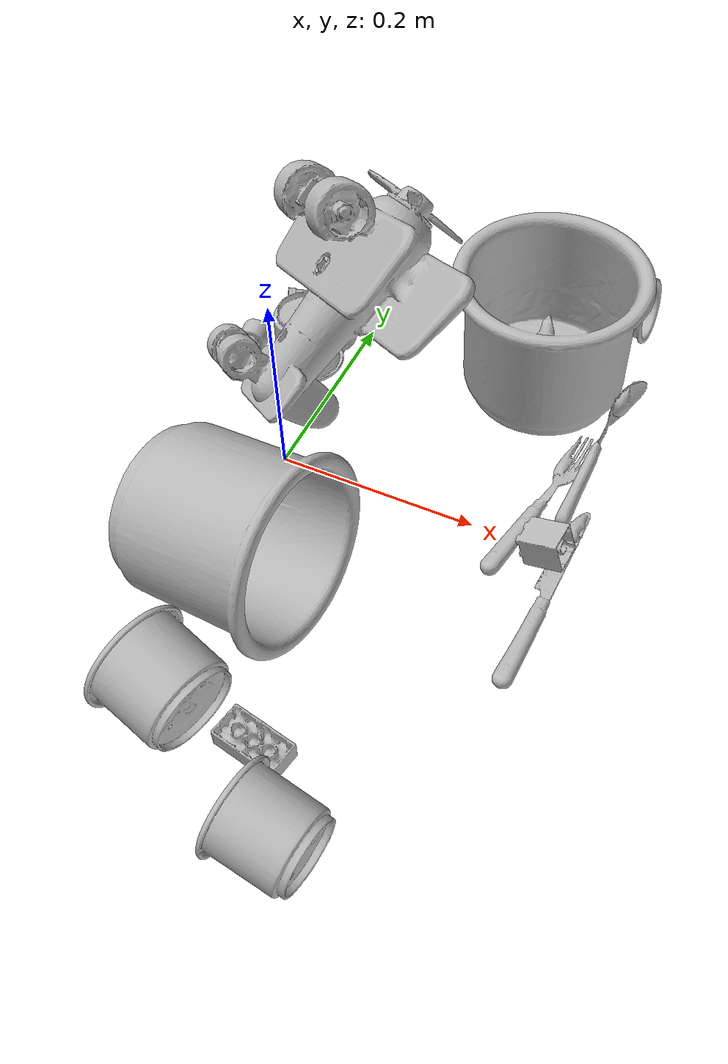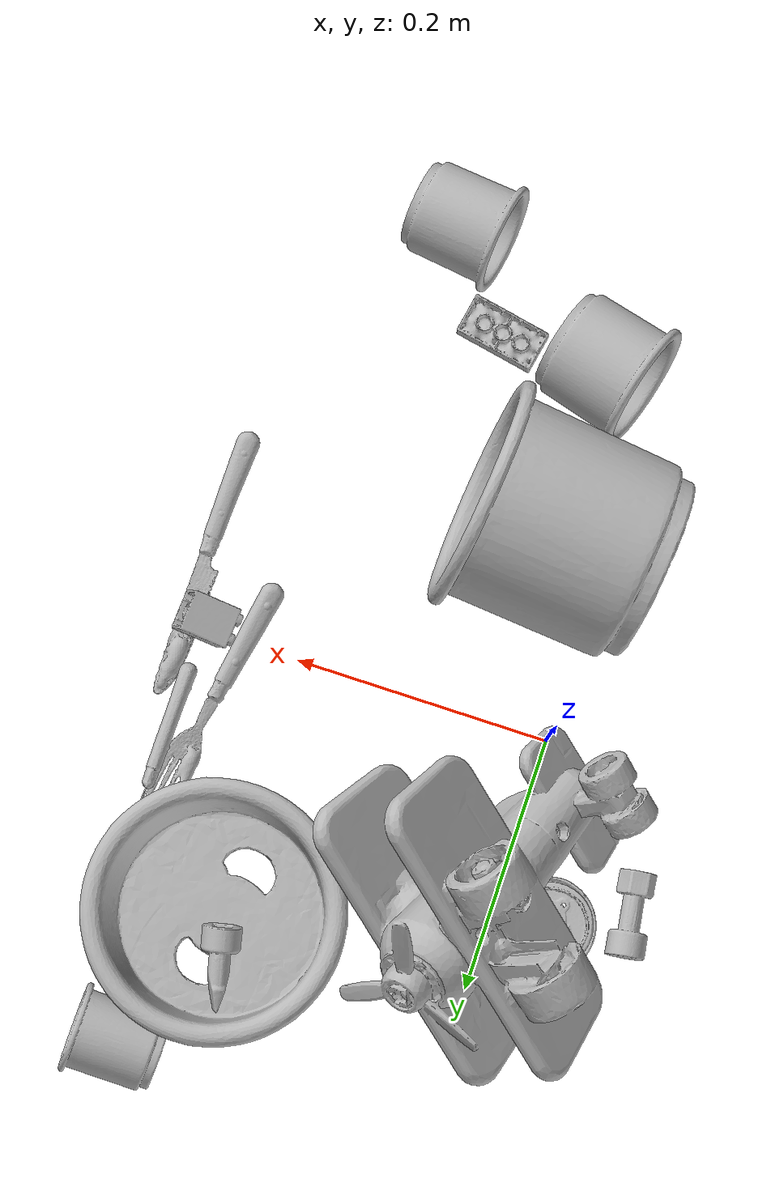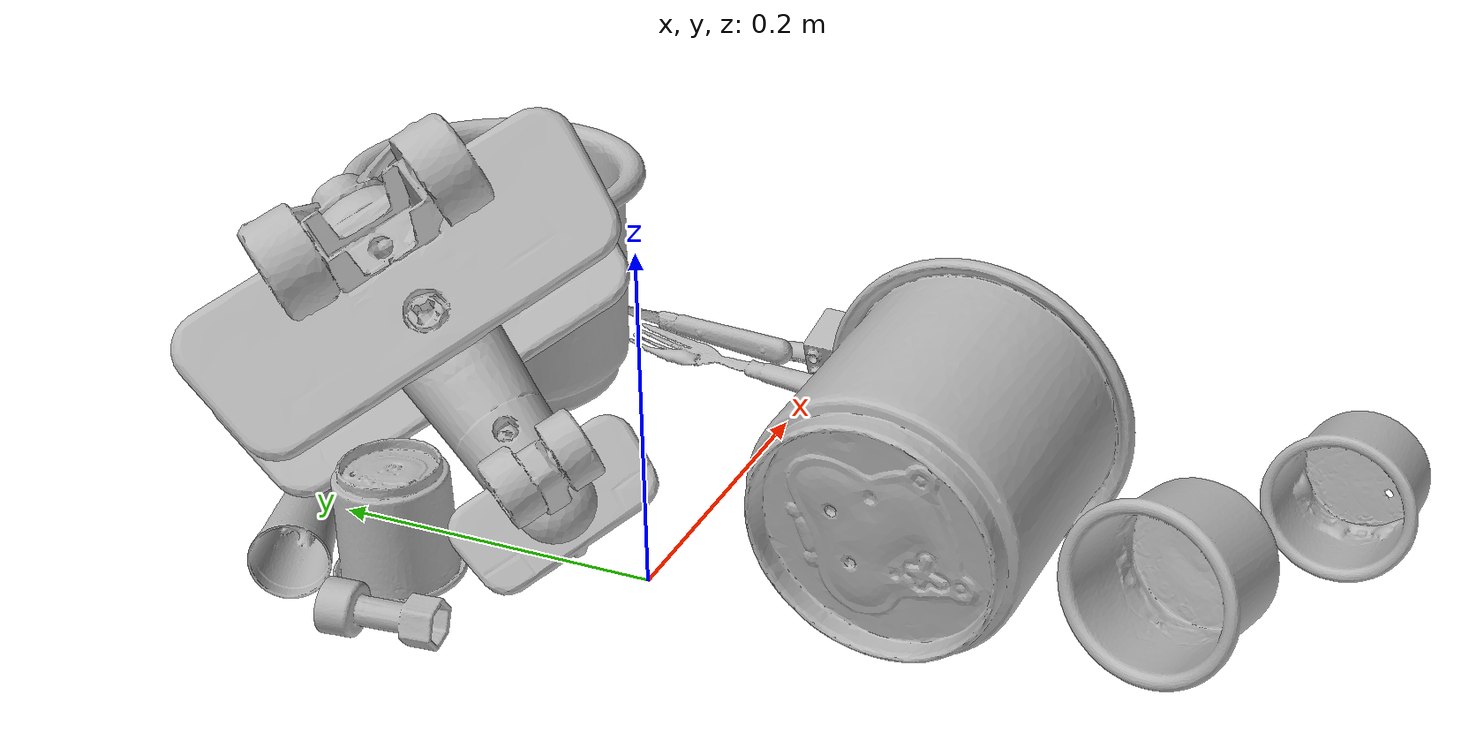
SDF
<sdf version="1.4">
  <world name="default">
    <light name="light1" type="point">
      <pose>0 0 1 0 0 0</pose>
      <diffuse>3 3 3 1</diffuse>
      <specular>3 3 3 1</specular>
    </light>
    <light name="light2" type="point">
      <pose>0 0.5 2 0 0 0</pose>
      <diffuse>1 1 1 1</diffuse>
      <specular>1 1 1 1</specular>
    </light>
    <light name="light3" type="point">
      <pose>0 0.5 2 0 0 0</pose>
      <diffuse>3 3 3 1</diffuse>
      <specular>3 3 3 1</specular>
    </light>
    <scene>
      <ambient>0.7 0.7 0.7</ambient>
    </scene>
    <model name="cup1">
      <link name="link_cup1">
        <collision name="default">
          <geometry>
            <mesh>
              <uri>model://d_cups/collision_meshes/collision.obj</uri>
              <scale>1.0 1.0 1.0</scale>
            </mesh>
          </geometry>
          <surface>
            <friction>
              <ode>
                <mu>0.5</mu>
                <mu2>0.5</mu2>
              </ode>
            </friction>
          <contact>
        <ode>
            <max_vel>0</max_vel>
            <min_depth>0.0001</min_depth>
            <kp>1e8</kp>
        </ode>
    </contact></surface>
        </collision>
        <visual name="default">
          <geometry>
            <mesh>
              <uri>model://d_cups/visual_meshes/visual.dae</uri>
              <scale>1.0 1.0 1.0</scale>
            </mesh>
          </geometry>
        </visual>
        <inertial>
          <mass>0.02583918906748295</mass>
          <pose>0.0008068039314821362 0.001911739120259881 -0.0022666507866233587 0.24011637128749466 -0.2471028358176743 0.5942765290496752</pose>
          <inertia>
            <ixx>2.1633481e-05</ixx>
            <iyy>2.1570875e-05</iyy>
            <izz>1.9581978e-05</izz>
            <ixy>0</ixy>
            <ixz>0</ixz>
            <iyz>0</iyz>
          </inertia>
        </inertial>
      </link>
      <pose>0.23915976285934448 0.3190373480319977 0.03248830884695053 1.4626140511497536 0.5259004156397347 1.4885715087024447</pose>
    </model>
    <model name="silverware1">
      <link name="link_silverware1">
        <collision name="default">
          <geometry>
            <mesh>
              <uri>model://fork/collision_meshes/collision.obj</uri>
              <scale>1.0 1.0 1.0</scale>
            </mesh>
          </geometry>
          <surface>
            <friction>
              <ode>
                <mu>0.5</mu>
                <mu2>0.5</mu2>
              </ode>
            </friction>
          <contact>
        <ode>
            <max_vel>0</max_vel>
            <min_depth>0.0001</min_depth>
            <kp>1e8</kp>
        </ode>
    </contact></surface>
        </collision>
        <visual name="default">
          <geometry>
            <mesh>
              <uri>model://fork/visual_meshes/visual.dae</uri>
              <scale>1.0 1.0 1.0</scale>
            </mesh>
          </geometry>
        </visual>
        <inertial>
          <mass>0.019409121945500374</mass>
          <pose>-0.02957003004848957 0.00046588227269239724 0.0003218860365450382 -0.013551247621251511 -0.010977829980421018 0.014453895491116085</pose>
          <inertia>
            <ixx>6.8039935e-07</ixx>
            <iyy>5.0671635e-05</iyy>
            <izz>5.097597e-05</izz>
            <ixy>0</ixy>
            <ixz>0</ixz>
            <iyz>0</iyz>
          </inertia>
        </inertial>
      </link>
      <pose>0.2517370879650116 0.046455442905426025 0.005700439214706421 -0.1790569022013569 0.025193960355978807 1.3808794364149117</pose>
    </model>
    <model name="cup2">
      <link name="link_cup2">
        <collision name="default">
          <geometry>
            <mesh>
              <uri>model://e_cups/collision_meshes/collision.obj</uri>
              <scale>1.0 1.0 1.0</scale>
            </mesh>
          </geometry>
          <surface>
            <friction>
              <ode>
                <mu>0.5</mu>
                <mu2>0.5</mu2>
              </ode>
            </friction>
          <contact>
        <ode>
            <max_vel>0</max_vel>
            <min_depth>0.0001</min_depth>
            <kp>1e8</kp>
        </ode>
    </contact></surface>
        </collision>
        <visual name="default">
          <geometry>
            <mesh>
              <uri>model://e_cups/visual_meshes/visual.dae</uri>
              <scale>1.0 1.0 1.0</scale>
            </mesh>
          </geometry>
        </visual>
        <inertial>
          <mass>0.044056184589862823</mass>
          <pose>0.0011355748865753412 0.0028797839768230915 -0.0038829699624329805 0.6952404811842238 0.0876797234541652 -0.5235249298074676</pose>
          <inertia>
            <ixx>3.8846523e-05</ixx>
            <iyy>4.060018e-05</iyy>
            <izz>3.714177e-05</izz>
            <ixy>0</ixy>
            <ixz>0</ixz>
            <iyz>0</iyz>
          </inertia>
        </inertial>
      </link>
      <pose>-0.04459633678197861 0.1344165802001953 0.035606902092695236 3.1396964819115096 0.008251964642583003 1.339457141085769</pose>
    </model>
    <model name="silverware2">
      <link name="link_silverware2">
        <collision name="default">
          <geometry>
            <mesh>
              <uri>model://knife/collision_meshes/collision.obj</uri>
              <scale>1.0 1.0 1.0</scale>
            </mesh>
          </geometry>
          <surface>
            <friction>
              <ode>
                <mu>0.5</mu>
                <mu2>0.5</mu2>
              </ode>
            </friction>
          <contact>
        <ode>
            <max_vel>0</max_vel>
            <min_depth>0.0001</min_depth>
            <kp>1e8</kp>
        </ode>
    </contact></surface>
        </collision>
        <visual name="default">
          <geometry>
            <mesh>
              <uri>model://knife/visual_meshes/visual.dae</uri>
              <scale>1.0 1.0 1.0</scale>
            </mesh>
          </geometry>
        </visual>
        <inertial>
          <mass>0.018338654190301895</mass>
          <pose>-0.02378525212407112 0.00152751209679991 5.062017953605391e-05 0.07305878484845407 0.017248414361503102 -0.007409825003193847</pose>
          <inertia>
            <ixx>5.2052525e-07</ixx>
            <iyy>7.045415e-05</iyy>
            <izz>7.062178e-05</izz>
            <ixy>0</ixy>
            <ixz>0</ixz>
            <iyz>0</iyz>
          </inertia>
        </inertial>
      </link>
      <pose>0.2898024320602417 -0.048750318586826324 0.005968821235001087 3.0814971988734636 0.043774667383601897 1.5505397412175552</pose>
    </model>
    <model name="cup3">
      <link name="link_cup3">
        <collision name="default">
          <geometry>
            <mesh>
              <uri>model://g_cups/collision_meshes/collision.obj</uri>
              <scale>1.0 1.0 1.0</scale>
            </mesh>
          </geometry>
          <surface>
            <friction>
              <ode>
                <mu>0.5</mu>
                <mu2>0.5</mu2>
              </ode>
            </friction>
          <contact>
        <ode>
            <max_vel>0</max_vel>
            <min_depth>0.0001</min_depth>
            <kp>1e8</kp>
        </ode>
    </contact></surface>
        </collision>
        <visual name="default">
          <geometry>
            <mesh>
              <uri>model://g_cups/visual_meshes/visual.dae</uri>
              <scale>1.0 1.0 1.0</scale>
            </mesh>
          </geometry>
        </visual>
        <inertial>
          <mass>0.07798270881175995</mass>
          <pose>-0.0007946274126879871 -4.206407902529463e-05 -0.0021329382434487343 -0.21383467808934026 -0.31409923984197585 0.31123390815877217</pose>
          <inertia>
            <ixx>9.102333e-05</ixx>
            <iyy>9.0713715e-05</iyy>
            <izz>9.428446e-05</izz>
            <ixy>0</ixy>
            <ixz>0</ixz>
            <iyz>0</iyz>
          </inertia>
        </inertial>
      </link>
      <pose>0.18405134975910187 -0.35723617672920227 0.04002479463815689 0.8011569418943038 -1.4169345323154285 -0.9395007019890687</pose>
    </model>
    <model name="silverware3">
      <link name="link_silverware3">
        <collision name="default">
          <geometry>
            <mesh>
              <uri>model://spoon/collision_meshes/collision.obj</uri>
              <scale>1.0 1.0 1.0</scale>
            </mesh>
          </geometry>
          <surface>
            <friction>
              <ode>
                <mu>0.5</mu>
                <mu2>0.5</mu2>
              </ode>
            </friction>
          <contact>
        <ode>
            <max_vel>0</max_vel>
            <min_depth>0.0001</min_depth>
            <kp>1e8</kp>
        </ode>
    </contact></surface>
        </collision>
        <visual name="default">
          <geometry>
            <mesh>
              <uri>model://spoon/visual_meshes/visual.dae</uri>
              <scale>1.0 1.0 1.0</scale>
            </mesh>
          </geometry>
        </visual>
        <inertial>
          <mass>0.03767607361078262</mass>
          <pose>-0.005526314023882151 -0.00160341733135283 -0.0007271650829352438 0.035216427360727776 -0.03906582911385382 0.006150613897789847</pose>
          <inertia>
            <ixx>2.095604e-06</ixx>
            <iyy>0.00014335623</iyy>
            <izz>0.00014438969</izz>
            <ixy>0</ixy>
            <ixz>0</ixz>
            <iyz>0</iyz>
          </inertia>
        </inertial>
      </link>
      <pose>0.2817299962043762 0.12650799751281738 0.01832650415599346 1.5371326235932417 -0.07535748093430901 1.5470035432892184</pose>
    </model>
    <model name="cup4">
      <link name="link_cup4">
        <collision name="default">
          <geometry>
            <mesh>
              <uri>model://i_cups/collision_meshes/collision.obj</uri>
              <scale>2.0 2.0 2.0</scale>
            </mesh>
          </geometry>
          <surface>
            <friction>
              <ode>
                <mu>0.5</mu>
                <mu2>0.5</mu2>
              </ode>
            </friction>
          <contact>
        <ode>
            <max_vel>0</max_vel>
            <min_depth>0.0001</min_depth>
            <kp>1e8</kp>
        </ode>
    </contact></surface>
        </collision>
        <visual name="default">
          <geometry>
            <mesh>
              <uri>model://i_cups/visual_meshes/visual.dae</uri>
              <scale>2.0 2.0 2.0</scale>
            </mesh>
          </geometry>
        </visual>
        <inertial>
          <mass>0.5538490414619446</mass>
          <pose>0.00022480632469523698 0.00033594807609915733 -0.0017158057307824492 -0.028982964625507153 -0.039873324075769 -0.3459146585522926</pose>
          <inertia>
            <ixx>0.003067248</ixx>
            <iyy>0.003094273</iyy>
            <izz>0.0034281453</izz>
            <ixy>0</ixy>
            <ixz>0</ixz>
            <iyz>0</iyz>
          </inertia>
        </inertial>
      </link>
      <pose>0.19478225708007812 0.2037825584411621 0.07554902136325836 0.0019071884424868668 -0.00638142283193635 1.0758763767505062</pose>
    </model>
    <model name="cup41">
      <link name="link_cup41">
        <collision name="default">
          <geometry>
            <mesh>
              <uri>model://cup_small/collision_meshes/collision.obj</uri>
              <scale>1.0 1.0 1.0</scale>
            </mesh>
          </geometry>
          <surface>
            <friction>
              <ode>
                <mu>0.5</mu>
                <mu2>0.5</mu2>
              </ode>
            </friction>
          <contact>
        <ode>
            <max_vel>0</max_vel>
            <min_depth>0.0001</min_depth>
            <kp>1e8</kp>
        </ode>
    </contact></surface>
        </collision>
        <visual name="default">
          <geometry>
            <mesh>
              <uri>model://cup_small/visual_meshes/visual.dae</uri>
              <scale>1.0 1.0 1.0</scale>
            </mesh>
          </geometry>
        </visual>
        <inertial>
          <mass>0.014494861476123333</mass>
          <pose>0.000104824714071583 -0.0003377838584128767 -0.010742826387286186 -0.01149312034772668 -0.015280288652376739 -0.5058210166411498</pose>
          <inertia>
            <ixx>8.534352e-06</ixx>
            <iyy>8.578376e-06</iyy>
            <izz>3.853286e-06</izz>
            <ixy>0</ixy>
            <ixz>0</ixz>
            <iyz>0</iyz>
          </inertia>
        </inertial>
      </link>
      <pose>-0.058755479753017426 0.18968650698661804 0.01986086368560791 -1.0151309503915207 1.4016647003751574 2.5732364408994686</pose>
    </model>
    <model name="cup5">
      <link name="link_cup5">
        <collision name="default">
          <geometry>
            <mesh>
              <uri>model://h_cups/collision_meshes/collision.obj</uri>
              <scale>2.0 2.0 2.0</scale>
            </mesh>
          </geometry>
          <surface>
            <friction>
              <ode>
                <mu>0.5</mu>
                <mu2>0.5</mu2>
              </ode>
            </friction>
          <contact>
        <ode>
            <max_vel>0</max_vel>
            <min_depth>0.0001</min_depth>
            <kp>1e8</kp>
        </ode>
    </contact></surface>
        </collision>
        <visual name="default">
          <geometry>
            <mesh>
              <uri>model://h_cups/visual_meshes/visual.dae</uri>
              <scale>2.0 2.0 2.0</scale>
            </mesh>
          </geometry>
        </visual>
        <inertial>
          <mass>0.5365790128707886</mass>
          <pose>-5.406028139987029e-05 0.00046037189895287156 -0.0036810787860304117 -0.02436222281077587 0.06545240855648493 0.12885003891433794</pose>
          <inertia>
            <ixx>0.002771868</ixx>
            <iyy>0.0027387904</iyy>
            <izz>0.0029069292</izz>
            <ixy>0</ixy>
            <ixz>0</ixz>
            <iyz>0</iyz>
          </inertia>
        </inertial>
      </link>
      <pose>0.0365690253674984 -0.1503804624080658 0.08468254655599594 -1.4649983168971517 -0.40139480797041616 -1.7038727574625963</pose>
    </model>
    <model name="cup51">
      <link name="link_cup51">
        <collision name="default">
          <geometry>
            <mesh>
              <uri>model://j_cups/collision_meshes/collision.obj</uri>
              <scale>1.0 1.0 1.0</scale>
            </mesh>
          </geometry>
          <surface>
            <friction>
              <ode>
                <mu>0.5</mu>
                <mu2>0.5</mu2>
              </ode>
            </friction>
          <contact>
        <ode>
            <max_vel>0</max_vel>
            <min_depth>0.0001</min_depth>
            <kp>1e8</kp>
        </ode>
    </contact></surface>
        </collision>
        <visual name="default">
          <geometry>
            <mesh>
              <uri>model://j_cups/visual_meshes/visual.dae</uri>
              <scale>1.0 1.0 1.0</scale>
            </mesh>
          </geometry>
        </visual>
        <inertial>
          <mass>0.08643309026956558</mass>
          <pose>0.0006164878141134977 0.000539897009730339 -0.0013479007175192237 0.030303582878034346 0.03757999590477698 0.4386876701083768</pose>
          <inertia>
            <ixx>0.00012691108</ixx>
            <iyy>0.00012823076</iyy>
            <izz>0.00014630218</izz>
            <ixy>0</ixy>
            <ixz>0</ixz>
            <iyz>0</iyz>
          </inertia>
        </inertial>
      </link>
      <pose>0.04676159843802452 -0.2852384150028229 0.04715501517057419 -1.438294152586039 -0.31939358581115185 1.2537221053929275</pose>
    </model>
    <model name="toy1">
      <link name="link_toy1">
        <collision name="default">
          <geometry>
            <mesh>
              <uri>model://f_lego_duplo/collision_meshes/collision.obj</uri>
              <scale>1.0 1.0 1.0</scale>
            </mesh>
          </geometry>
          <surface>
            <friction>
              <ode>
                <mu>0.5</mu>
                <mu2>0.5</mu2>
              </ode>
            </friction>
          <contact>
        <ode>
            <max_vel>0</max_vel>
            <min_depth>0.0001</min_depth>
            <kp>1e8</kp>
        </ode>
    </contact></surface>
        </collision>
        <visual name="default">
          <geometry>
            <mesh>
              <uri>model://f_lego_duplo/visual_meshes/visual.dae</uri>
              <scale>1.0 1.0 1.0</scale>
            </mesh>
          </geometry>
        </visual>
        <inertial>
          <mass>0.03726755082607269</mass>
          <pose>2.3694148694630712e-05 0.00013393144763540477 0.0018837880343198776 0.029838475432906467 -0.014425202105620092 -0.6756589304715467</pose>
          <inertia>
            <ixx>7.874838e-06</ixx>
            <iyy>7.944995e-06</iyy>
            <izz>6.8356926e-06</izz>
            <ixy>0</ixy>
            <ixz>0</ixz>
            <iyz>0</iyz>
          </inertia>
        </inertial>
      </link>
      <pose>0.27390313148498535 -0.007006455212831497 0.02052585780620575 3.141378651624764 1.2707789979618191 -0.07280303769072609</pose>
    </model>
    <model name="toy2">
      <link name="link_toy2">
        <collision name="default">
          <geometry>
            <mesh>
              <uri>model://a_toy_airplane/collision_meshes/collision.obj</uri>
              <scale>1.0 1.0 1.0</scale>
            </mesh>
          </geometry>
          <surface>
            <friction>
              <ode>
                <mu>0.5</mu>
                <mu2>0.5</mu2>
              </ode>
            </friction>
          <contact>
        <ode>
            <max_vel>0</max_vel>
            <min_depth>0.0001</min_depth>
            <kp>1e8</kp>
        </ode>
    </contact></surface>
        </collision>
        <visual name="default">
          <geometry>
            <mesh>
              <uri>model://a_toy_airplane/visual_meshes/visual.dae</uri>
              <scale>1.0 1.0 1.0</scale>
            </mesh>
          </geometry>
        </visual>
        <inertial>
          <mass>2.8230273723602295</mass>
          <pose>0.025165094062685966 -0.003707324154675007 -0.0011962448479607701 -0.012016973205606891 -0.14663498091084715 0.004149146833454428</pose>
          <inertia>
            <ixx>0.010251767</ixx>
            <iyy>0.014938904</iyy>
            <izz>0.017491622</izz>
            <ixy>0</ixy>
            <ixz>0</ixz>
            <iyz>0</iyz>
          </inertia>
        </inertial>
      </link>
      <pose>0.006262217648327351 0.11561904102563858 0.11549630016088486 2.5670455343791345 -0.7483062296170089 1.2943788710527038</pose>
    </model>
    <model name="toy3">
      <link name="link_toy3">
        <collision name="default">
          <geometry>
            <mesh>
              <uri>model://e_toy_airplane/collision_meshes/collision.obj</uri>
              <scale>1.0 1.0 1.0</scale>
            </mesh>
          </geometry>
          <surface>
            <friction>
              <ode>
                <mu>0.5</mu>
                <mu2>0.5</mu2>
              </ode>
            </friction>
          <contact>
        <ode>
            <max_vel>0</max_vel>
            <min_depth>0.0001</min_depth>
            <kp>1e8</kp>
        </ode>
    </contact></surface>
        </collision>
        <visual name="default">
          <geometry>
            <mesh>
              <uri>model://e_toy_airplane/visual_meshes/visual.dae</uri>
              <scale>1.0 1.0 1.0</scale>
            </mesh>
          </geometry>
        </visual>
        <inertial>
          <mass>0.018226178362965584</mass>
          <pose>0.00011740501213353127 -2.2482903659692965e-05 -0.011187204159796238 0.005518473613481416 0.009228340672948143 0.1504115676354622</pose>
          <inertia>
            <ixx>5.5628384e-06</ixx>
            <iyy>5.505933e-06</iyy>
            <izz>1.6718515e-06</izz>
            <ixy>0</ixy>
            <ixz>0</ixz>
            <iyz>0</iyz>
          </inertia>
        </inertial>
      </link>
      <pose>0.18286487460136414 0.24313952028751373 0.029962031170725822 1.7330372350809644 0.38011726284019814 -2.8639653545108716</pose>
    </model>
    <model name="toy4">
      <link name="link_toy4">
        <collision name="default">
          <geometry>
            <mesh>
              <uri>model://c_toy_airplane/collision_meshes/collision.obj</uri>
              <scale>1.0 1.0 1.0</scale>
            </mesh>
          </geometry>
          <surface>
            <friction>
              <ode>
                <mu>0.5</mu>
                <mu2>0.5</mu2>
              </ode>
            </friction>
          <contact>
        <ode>
            <max_vel>0</max_vel>
            <min_depth>0.0001</min_depth>
            <kp>1e8</kp>
        </ode>
    </contact></surface>
        </collision>
        <visual name="default">
          <geometry>
            <mesh>
              <uri>model://c_toy_airplane/visual_meshes/visual.dae</uri>
              <scale>1.0 1.0 1.0</scale>
            </mesh>
          </geometry>
        </visual>
        <inertial>
          <mass>0.025432955473661423</mass>
          <pose>-0.00023024249821901321 -4.429159048413567e-07 -0.006080531049519777 -0.006192114712999555 -0.016797950833505656 0.7654545807195076</pose>
          <inertia>
            <ixx>1.1678292e-05</ixx>
            <iyy>1.1645335e-05</iyy>
            <izz>2.7418316e-06</izz>
            <ixy>0</ixy>
            <ixz>0</ixz>
            <iyz>0</iyz>
          </inertia>
        </inertial>
      </link>
      <pose>-0.10286001861095428 0.10635276883840561 0.014399593695998192 -1.615647348509568 0.42678894802658984 -3.0273622854148132</pose>
    </model>
    <model name="toy5">
      <link name="link_toy5">
        <collision name="default">
          <geometry>
            <mesh>
              <uri>model://c_lego_duplo/collision_meshes/collision.obj</uri>
              <scale>1.0 1.0 1.0</scale>
            </mesh>
          </geometry>
          <surface>
            <friction>
              <ode>
                <mu>0.5</mu>
                <mu2>0.5</mu2>
              </ode>
            </friction>
          <contact>
        <ode>
            <max_vel>0</max_vel>
            <min_depth>0.0001</min_depth>
            <kp>1e8</kp>
        </ode>
    </contact></surface>
        </collision>
        <visual name="default">
          <geometry>
            <mesh>
              <uri>model://c_lego_duplo/visual_meshes/visual.dae</uri>
              <scale>1.0 1.0 1.0</scale>
            </mesh>
          </geometry>
        </visual>
        <inertial>
          <mass>0.03308485820889473</mass>
          <pose>0.00031645988929085433 0.00019464598153717816 0.0010453154100105166 -0.011520788894510418 0.005900092683279709 0.031100331745055027</pose>
          <inertia>
            <ixx>1.2731672e-05</ixx>
            <iyy>4.066954e-06</iyy>
            <izz>1.4878268e-05</izz>
            <ixy>0</ixy>
            <ixz>0</ixz>
            <iyz>0</iyz>
          </inertia>
        </inertial>
      </link>
      <pose>0.12859956920146942 -0.28853264451026917 0.011916430667042732 -3.135168138963905 -0.0005817725898350497 1.4021329932184832</pose>
    </model>
  <physics type="ode">
      <max_contacts>50</max_contacts>
      <ode>
        <solver>
          <type>quick</type>
          <iters>75</iters>
        </solver>
        <constraints>
          <contact_max_correcting_vel>0</contact_max_correcting_vel>
          <contact_surface_layer>0</contact_surface_layer>
        </constraints>
      </ode>
    </physics></world>
</sdf>
